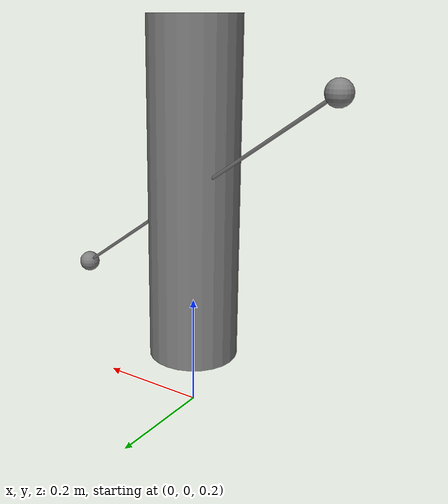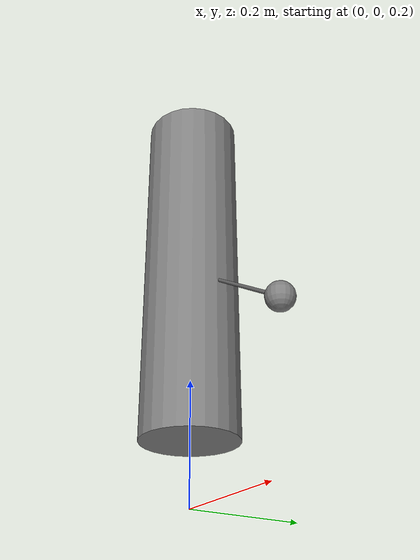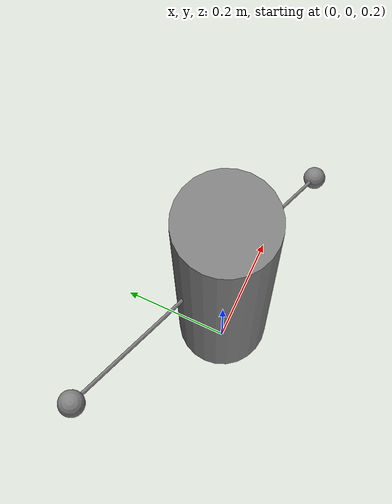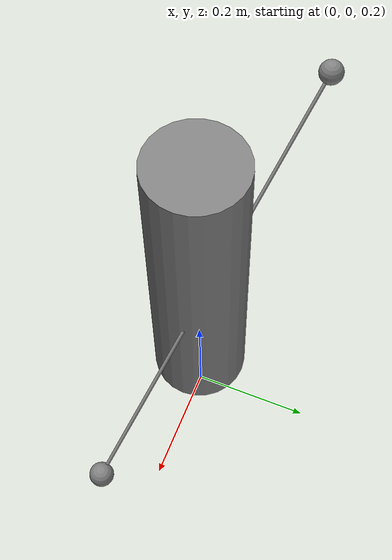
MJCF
<mujoco model="cylinder-wrap">
  <option gravity="0 0 0" timestep="0.002"/>
  <compiler angle="radian"/>
  <worldbody>
    <body name="cyl_body" pos="0 0 0.6">
      <geom name="wrap_cyl" type="cylinder" size="0.08 0.3"
            contype="0" conaffinity="0"/>
    </body>
    <body name="b1" pos="-0.3 0.1 0.8">
      <joint name="j1" type="slide" axis="1 0 0"/>
      <geom type="sphere" size="0.02" mass="0.5"/>
      <site name="s1" pos="0 0 0"/>
    </body>
    <body name="b2" pos="0.3 -0.05 0.4">
      <joint name="j2" type="slide" axis="1 0 0"/>
      <geom type="sphere" size="0.02" mass="0.5"/>
      <site name="s2" pos="0 0 0"/>
    </body>
  </worldbody>
  <tendon>
    <spatial name="t1">
      <site site="s1"/>
      <geom geom="wrap_cyl"/>
      <site site="s2"/>
    </spatial>
  </tendon>
</mujoco>
